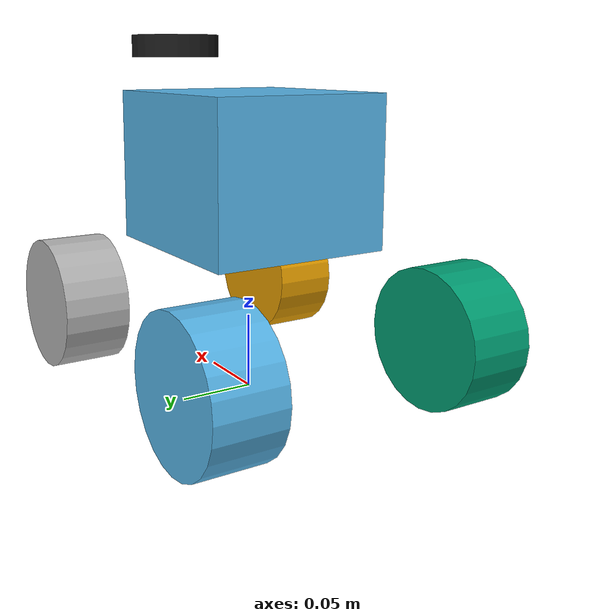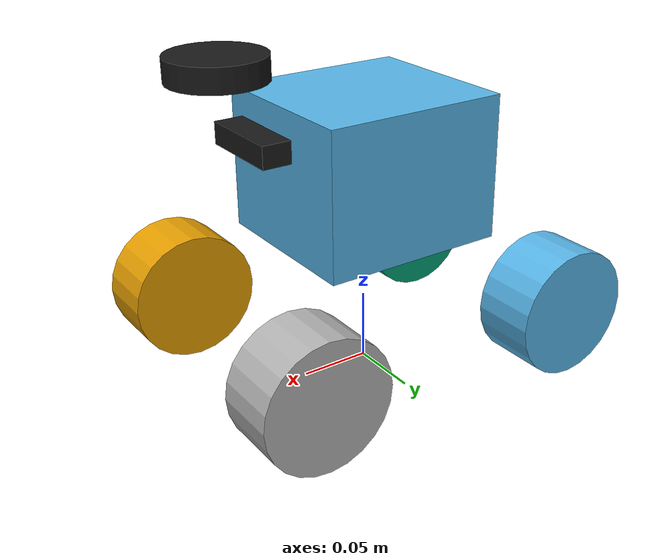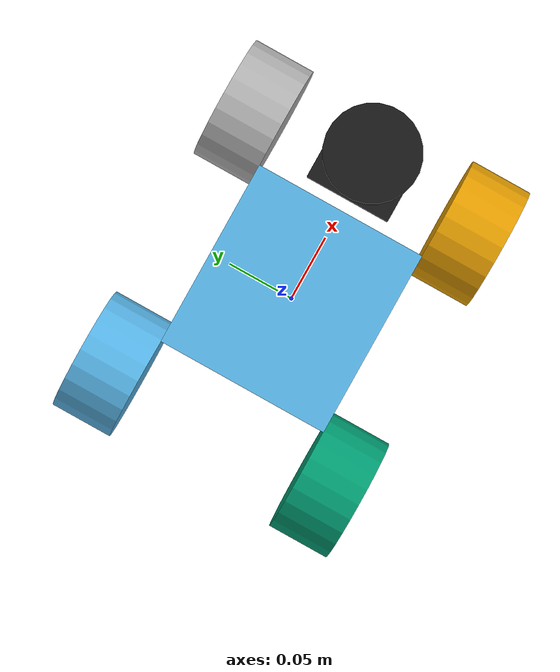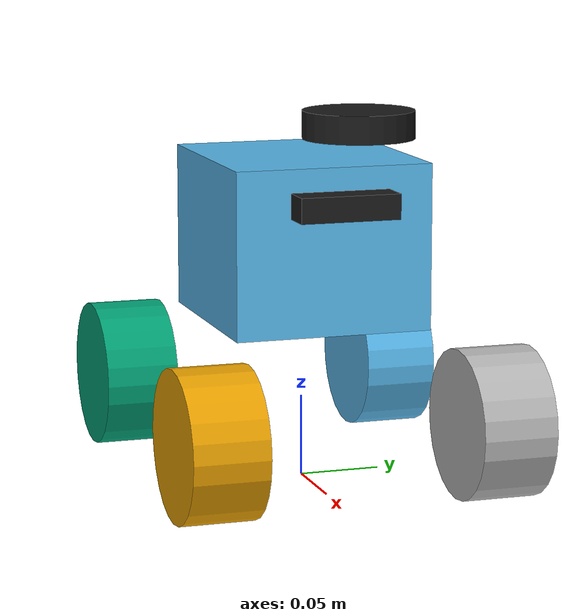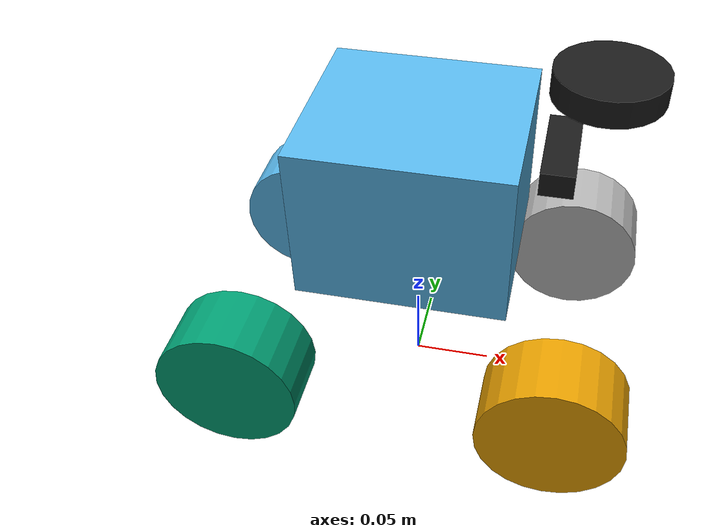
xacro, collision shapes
<?xml version="1.0"?>

<robot name="limo_four_diff" xmlns:xacro="http://ros.org/wiki/xacro">

    <xacro:include filename="$(find limo_description)/urdf/limo_xacro.xacro" />

    <!-- Variables -->
    <xacro:property name="M_PI" value="3.14159"/>

    <!-- Vehicle Geometries -->
    <xacro:property name="base_x_size" value="0.13" />
    <xacro:property name="base_y_size" value="0.12" />
    <xacro:property name="base_z_size" value="0.1" />

    <xacro:property name="wheelbase" value="0.2"/>
    <xacro:property name="track" value="0.172"/>
    <xacro:property name="wheel_vertical_offset" value="-0.10" />
    <xacro:property name="base_mass" value="2.1557"/>

    <xacro:property name="wheel_length" value="0.045" />
    <xacro:property name="wheel_radius" value="0.045" />
  <link name="base_footprint"/>

  <joint name="base_joint" type="fixed">
    <parent link="base_footprint"/>
    <child link="base_link"/>
    <origin xyz="0.0 0.0 0.15" rpy="0 0 0"/>
  </joint>
    <!-- Base link -->
    <link name="base_link">
        <visual>
            <origin xyz="0 0 -0.15" rpy="0 0 1.57" />
            <geometry>
                <mesh filename="file://$(find limo_description)/meshes/limo_base.dae" scale="1 1 1"/>
            </geometry>
        </visual>
        <collision>
            <!--origin xyz="0 0 -0.15" rpy="0 0 1.57" /-->
            <origin xyz="0 0 0" rpy="0 0 0" />
          <geometry>
              <box size="${base_x_size} ${base_y_size} ${base_z_size}"/>
          </geometry>
        </collision>
    </link>

    <link name="inertial_link">
        <inertial>
            <origin xyz="0.0 0.0 0.0" />
            <mass value="${base_mass}" />
            <inertia ixx="0.24" ixy="0" ixz="0"
                     iyy="0.96" iyz="0"
                     izz="0.96" />
        </inertial>
    </link>

    <joint name="inertial_joint" type="fixed">
        <origin xyz="0 0 0" rpy="0 0 0" />
        <parent link="base_link" />
        <child link="inertial_link" />
    </joint>

    <xacro:limo_laser parent_prefix="base_link" frame_prefix="laser">
        <origin xyz="0.105 0 0.08" rpy="0 0 -0.15"/>
    </xacro:limo_laser>

    <xacro:limo_depth_camera parent_prefix="base_link" frame_prefix="camera">
        <origin xyz="0.084 0 0.03" rpy="0 0 0"/>
    </xacro:limo_depth_camera>

    <xacro:limo_imu parent_prefix="base_link" frame_prefix="imu">
        <origin xyz="0 0 0" rpy="0 0 0"/>
    </xacro:limo_imu>

    <xacro:limo_wheel parent_prefix="base_link" wheel_prefix="front_left" reflect="1">
        <origin xyz="${wheelbase/2} ${track/2} ${wheel_vertical_offset}" rpy="0 0  0" />
    </xacro:limo_wheel>

    <xacro:limo_wheel parent_prefix="base_link" wheel_prefix="front_right" reflect="-1">
        <origin xyz="${wheelbase/2} ${-track/2} ${wheel_vertical_offset}" rpy="${M_PI} 0 0" />
    </xacro:limo_wheel>

    <xacro:limo_wheel parent_prefix="base_link" wheel_prefix="rear_left" reflect="1">
        <origin xyz="${-wheelbase/2} ${track/2} ${wheel_vertical_offset}" rpy="0 0 0" />
    </xacro:limo_wheel>

    <xacro:limo_wheel parent_prefix="base_link" wheel_prefix="rear_right" reflect="-1">
        <origin xyz="${-wheelbase/2} ${-track/2} ${wheel_vertical_offset}" rpy="${M_PI} 0 0" />
    </xacro:limo_wheel>

    <gazebo reference="imu_link">
    <gravity>true</gravity>
    <!-- Gerçek LIMO IMU'su (24.09 ölçümü): ~92 Hz, jiroskop σ 0.00087 rad/s (0.1°/s nicemli; y 0.0016),
         ivmeölçer σ 0.025 m/s², duruşta yön kayması ~0. Konu gerçekteki gibi /imu. -->
    <sensor name="twr_imu" type="imu">
      <always_on>true</always_on>
      <update_rate>90</update_rate>
      <visualize>true</visualize>
      <imu>
        <orientation>
          <x>
            <noise type="gaussian">
              <mean>0.0</mean>
              <stddev>1e-4</stddev>
            </noise>
          </x>
          <y>
            <noise type="gaussian">
              <mean>0.0</mean>
              <stddev>1e-4</stddev>
            </noise>
          </y>
          <z>
            <noise type="gaussian">
              <mean>0.0</mean>
              <stddev>1e-4</stddev>
            </noise>
          </z>
        </orientation>
        <angular_velocity>
          <x>
            <noise type="gaussian">
              <mean>0.0</mean>
              <stddev>0.00087</stddev>
            </noise>
          </x>
          <y>
            <noise type="gaussian">
              <mean>0.0</mean>
              <stddev>0.0016</stddev>
            </noise>
          </y>
          <z>
            <noise type="gaussian">
              <mean>0.0</mean>
              <stddev>0.00087</stddev>
            </noise>
          </z>
        </angular_velocity>
        <linear_acceleration>
          <x>
            <noise type="gaussian">
              <mean>0.0</mean>
              <stddev>0.025</stddev>
            </noise>
          </x>
          <y>
            <noise type="gaussian">
              <mean>0.0</mean>
              <stddev>0.025</stddev>
            </noise>
          </y>
          <z>
            <noise type="gaussian">
              <mean>0.0</mean>
              <stddev>0.025</stddev>
            </noise>
          </z>
        </linear_acceleration>
      </imu>
      <plugin name="two_wheeled_robot_imu" filename="libgazebo_ros_imu_sensor.so">
        <initial_orientation_as_reference>false</initial_orientation_as_reference>
        <frame_name>imu_link</frame_name>
        <ros>
          <namespace>/</namespace>
          <remapping>~/out:=imu</remapping>
        </ros>
      </plugin>
    </sensor>
</gazebo>
<gazebo reference="laser_link">
    <sensor name="laser" type="ray">
      <always_on>true</always_on>
      <visualize>true</visualize>
      <update_rate>6</update_rate>
      <ray>
        <scan>
          <horizontal>
            <samples>481</samples>
            <resolution>1.000000</resolution>
            <min_angle>-2.1468</min_angle>
            <max_angle>2.4609</max_angle>
          </horizontal>
        </scan>
        <range>
          <min>0.10</min>
          <max>12.0</max>
          <resolution>0.015</resolution>
        </range>
        <noise>
          <type>gaussian</type>
          <mean>0.0</mean>
          <stddev>0.007</stddev>
        </noise>
      </ray>
      <plugin name="scan" filename="libgazebo_ros_ray_sensor.so">
        <ros>
          <remapping>~/out:=scan</remapping>
        </ros>
        <output_type>sensor_msgs/LaserScan</output_type>
        <frame_name>laser_link</frame_name>
      </plugin>
    </sensor>
  </gazebo>

    <gazebo reference="front_left_wheel_link">
        <mu1>0.05</mu1>
        <mu2>1.0</mu2>
        <kp>10000000.0</kp>
        <kd>1.0</kd>
        <minDepth>0.01</minDepth>
        <fdir1>0 0 1</fdir1>
        <maxContacts value="64"/>
    </gazebo>
    <gazebo reference="front_right_wheel_link">
        <mu1>0.05</mu1>
        <mu2>1.0</mu2>
        <kp>10000000.0</kp>
        <kd>1.0</kd>
        <minDepth>0.01</minDepth>
        <fdir1>0 0 1</fdir1>
        <maxContacts value="64"/>
    </gazebo>
    <gazebo reference="rear_left_wheel_link">
        <mu1>0.05</mu1>
        <mu2>1.0</mu2>
        <kp>10000000.0</kp>
        <kd>1.0</kd>
        <minDepth>0.01</minDepth>
        <fdir1>0 0 1</fdir1>
        <maxContacts value="64"/>
    </gazebo>
    <gazebo reference="rear_right_wheel_link">
        <mu1>0.05</mu1>
        <mu2>1.0</mu2>
        <kp>10000000.0</kp>
        <kd>1.0</kd>
        <minDepth>0.01</minDepth>
        <fdir1>0 0 1</fdir1>
        <maxContacts value="64"/>
    </gazebo>
    <gazebo>
        <plugin name="planar_move" filename="libgazebo_ros_planar_move.so">
            <!-- Komut gerçek taban modelinden geçer (limo_kinematics/taban_modeli): /cmd_vel -> cmd_vel_taban -->
            <ros><remapping>cmd_vel:=cmd_vel_taban</remapping></ros>
            <update_rate>50</update_rate>
            <publish_rate>50</publish_rate>
            <publish_odom>true</publish_odom>
            <publish_odom_tf>true</publish_odom_tf>
            <odometry_frame>odom</odometry_frame>
            <robot_base_frame>base_footprint</robot_base_frame>
        </plugin>
        <plugin name="wheel_joint_states" filename="libgazebo_ros_joint_state_publisher.so">
            <update_rate>20</update_rate>
            <joint_name>front_left_wheel</joint_name>
            <joint_name>front_right_wheel</joint_name>
            <joint_name>rear_left_wheel</joint_name>
            <joint_name>rear_right_wheel</joint_name>
        </plugin>
    </gazebo>
</robot>

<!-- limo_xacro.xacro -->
<robot name="limo_xacro" xmlns:xacro="http://ros.org/wiki/xacro">
    <xacro:macro name="limo_wheel" params="parent_prefix wheel_prefix reflect *joint_pose">
        <link name="${wheel_prefix}_wheel_link">
            <inertial>
                <origin xyz="0 0 0" />
                <mass value="0.5" />
                <inertia ixx="0.01055" ixy="0" ixz="0" iyy="0.00075" iyz="0" izz="0.01055" />
            </inertial>
            <visual>
                <origin xyz="0 0 0" rpy="0 0 0" />
                <geometry>
                    <mesh filename="file://$(find limo_description)/meshes/limo_wheel.dae" />
                </geometry>
            </visual>
            <collision>
              <!-- eklem merkezinde (2026-09-23): eskiden yarım tekerlek dışarı kaymıştı,
                   sim gövde genişliği 0.262 m oluyordu (gerçek 0.22 m) -->
              <origin xyz="0 0 0" rpy="1.57 0 0" />
              <geometry>
                  <cylinder length="${wheel_length}" radius="${wheel_radius}" />
              </geometry>
            </collision>
        </link>

        <joint name="${wheel_prefix}_wheel" type="continuous">
            <parent link="${parent_prefix}"/>
            <child link="${wheel_prefix}_wheel_link"/>
            <xacro:insert_block name="joint_pose"/>
            <axis xyz="0 ${reflect*1} 0"/>
        </joint>
    </xacro:macro>

    <xacro:macro name="limo_laser" params="parent_prefix frame_prefix *joint_pose">
        <link name='${frame_prefix}_link'>
            <pose>0 0 0 0 0 0</pose>
            <inertial>
                <mass value="0.1"/>
                <origin xyz="0.0 0 0" rpy="0 0 0"/>
                <inertia
                    ixx="1e-6" ixy="0" ixz="0"
                    iyy="1e-6" iyz="0"
                    izz="1e-6"
                />
            </inertial>
            <visual name='laser_visual'>
                <origin xyz="0 0 0" rpy="0 0 0"/>
                <geometry>
                    <cylinder radius="0.02" length="0.01"/>
                </geometry>
                <material name='laser_material'>
                    <color rgba="0.1 0.1 0.1 1.0"/>
                    <ambient>0.1 0.1 0.1 1</ambient>
                    <diffuse>0.1 0.1 0.2 1</diffuse>
                    <specular>0 0 0 0</specular>
                    <emissive>0 0 0 1</emissive>
                </material>
            </visual>
            <collision name='laser_collision'>
                <origin xyz="0 0 0" rpy="0 0 0"/>
                <geometry>
                    <cylinder radius="0.032" length="0.016"/>
                </geometry>
            </collision>
        </link>
        <joint type="fixed" name="laser_joint">
            <xacro:insert_block name="joint_pose"/>
            <child link="${frame_prefix}_link"/>
            <parent link="${parent_prefix}"/>
        </joint>
        <gazebo reference="${frame_prefix}_link">
            <material>Gazebo/Yellow</material>
        </gazebo>
    </xacro:macro>

    <xacro:macro name="limo_depth_camera" params="parent_prefix frame_prefix *joint_pose">
        <link name='${frame_prefix}_link'>
            <pose>0 0 0 0 0 0</pose>
            <inertial>
                <mass value="0.1"/>
                <origin xyz="0.0 0 0" rpy="0 0 0"/>
                <inertia
                    ixx="1e-6" ixy="0" ixz="0"
                    iyy="1e-6" iyz="0"
                    izz="1e-6"
                />
            </inertial>
            <visual name='depth_camera_visual'>
                <origin xyz="0 0 0" rpy="0 0 0"/>
                <geometry>
                    <box size="0.02 0.06 0.015"/>
                </geometry>
                <material name='depth_camera_material'>
                    <color rgba="0.1 0.1 0.1 1.0"/>
                    <ambient>0.1 0.1 0.1 1</ambient>
                    <diffuse>0.1 0.1 0.2 1</diffuse>
                    <specular>0 0 0 0</specular>
                    <emissive>0 0 0 1</emissive>
                </material>
            </visual>
            <collision name='depth_camera_collision'>
                <origin xyz="0 0 0" rpy="0 0 0"/>
                <geometry>
                    <box size="0.02 0.06 0.015"/>
                </geometry>
            </collision>

        </link>

        <joint type="fixed" name="depth_camera_joint">
            <xacro:insert_block name="joint_pose"/>
            <child link="${frame_prefix}_link"/>
            <parent link="${parent_prefix}"/>
        </joint>
        <link name="depth_link"></link>

        <joint name="${frame_prefix}_to_camera_joint" type="fixed">
            <origin xyz="0 0 0" rpy="${-M_PI/2} 0 ${-M_PI/2} "/>
            <parent link="${frame_prefix}_link"/>
            <child link="depth_link"/>
          </joint>

        <gazebo reference="${frame_prefix}_link">
            <material>Gazebo/Yellow</material>
        </gazebo>
    </xacro:macro>

    <xacro:macro name="limo_imu" params="parent_prefix frame_prefix  *joint_pose">
        <link name='${frame_prefix}_link'>
            <pose>0 0 0 0 0 0</pose>
            <inertial>
                <mass value="0.01"/>
                <origin xyz="0.0 0 0" rpy="0 0 0"/>
                <inertia
                    ixx="1e-7" ixy="0" ixz="0"
                    iyy="1e-7" iyz="0"
                    izz="1e-7"
                />
            </inertial>
            <visual name='imu_visual'>
                <origin xyz="0 0 0" rpy="0 0 0"/>
                <geometry>
                    <box size="0.001 0.001 0.001"/>
                </geometry>
                <material name='imu_material'>
                    <color rgba="0.1 0.1 0.1 1.0"/>
                    <ambient>0.1 0.1 0.1 1</ambient>
                    <diffuse>0.1 0.1 0.2 1</diffuse>
                    <specular>0 0 0 0</specular>
                    <emissive>0 0 0 1</emissive>
                </material>
            </visual>
            <collision name='imu_collision'>
                <origin xyz="0 0 0" rpy="0 0 0"/>
                <geometry>
                    <box size="0.001 0.001 0.001"/>
                </geometry>
            </collision>
        </link>
        <joint type="fixed" name="imu_joint">
            <xacro:insert_block name="joint_pose"/>
            <child link="${frame_prefix}_link"/>
            <parent link="${parent_prefix}"/>
        </joint>
        <gazebo reference="${frame_prefix}_link">
            <material>Gazebo/Yellow</material>
        </gazebo>
    </xacro:macro>
</robot>
